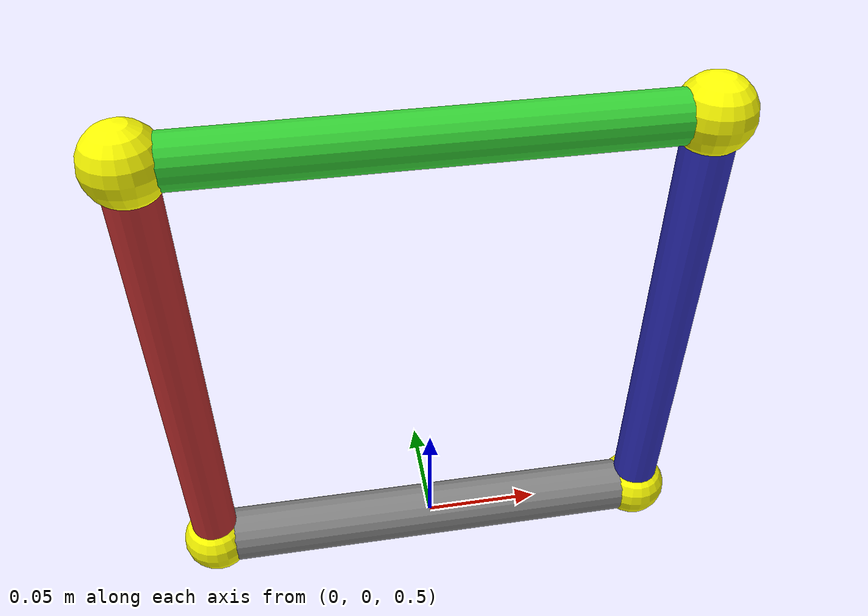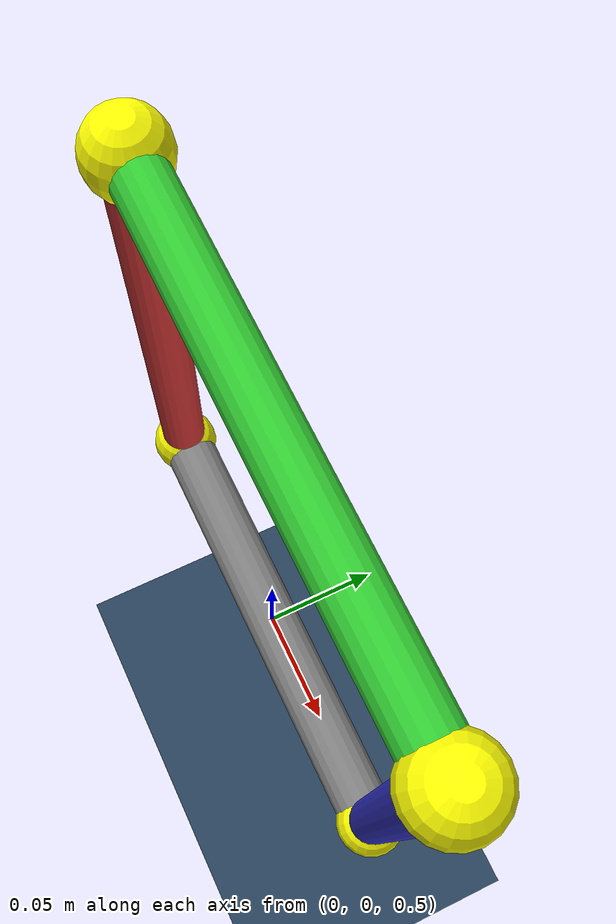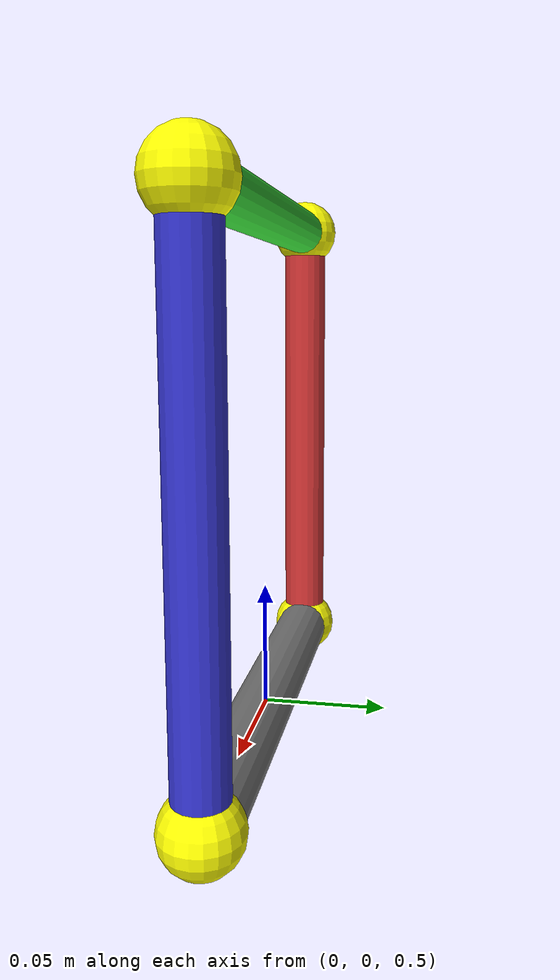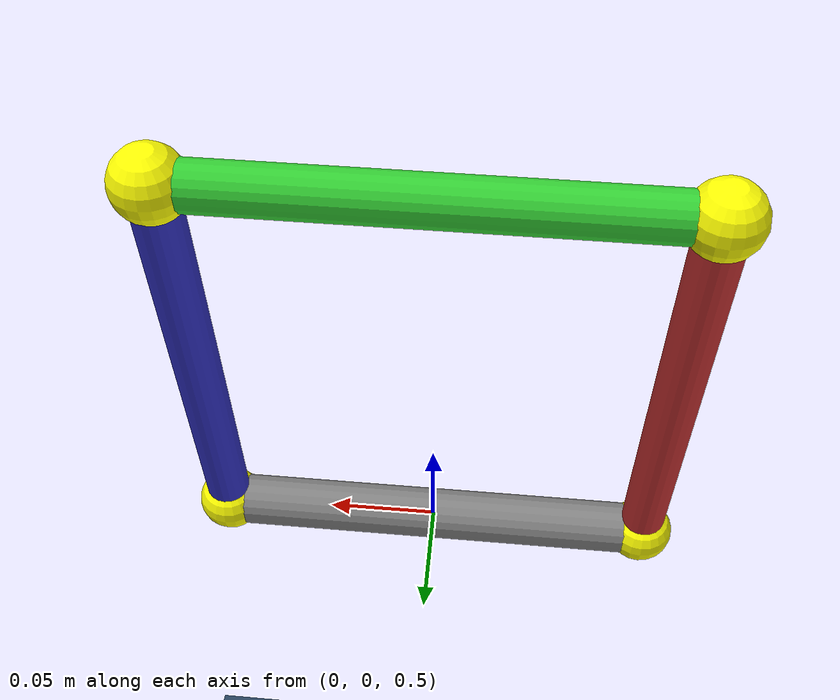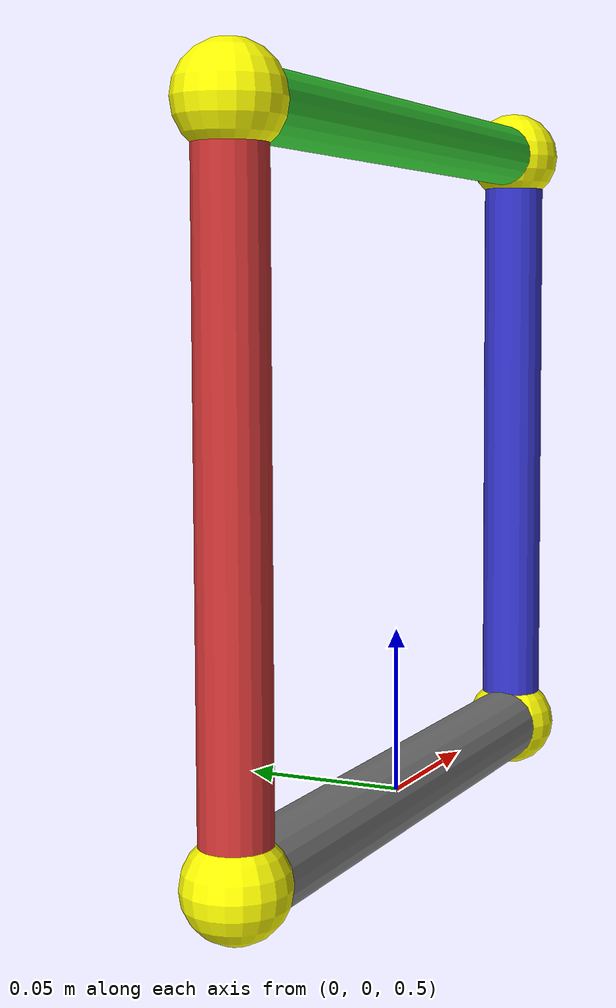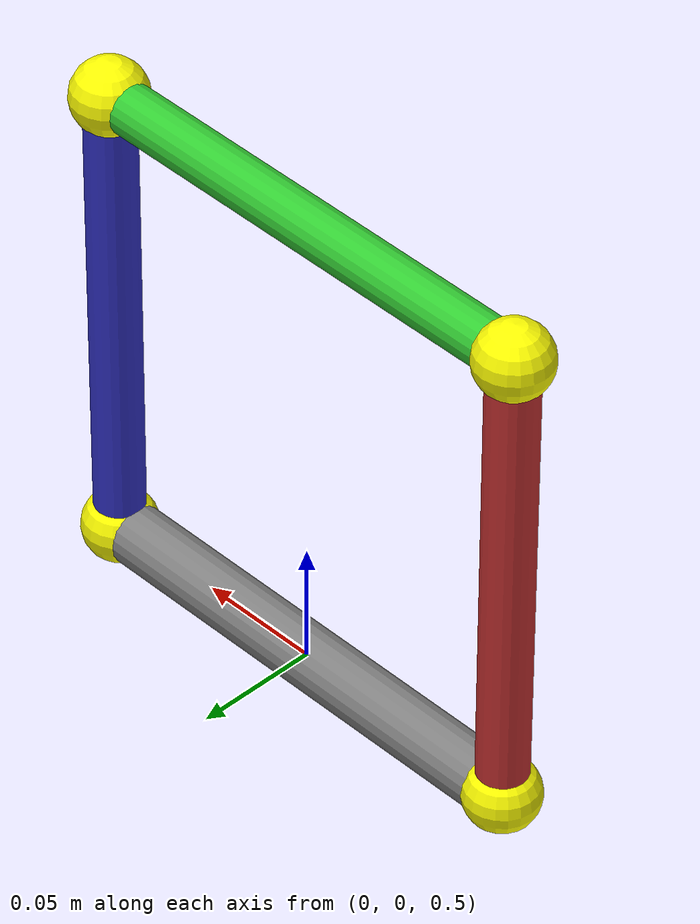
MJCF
<mujoco model="scene">
    <include file="simple.xml" />

    <visual>
        <headlight diffuse="0.6 0.6 0.6" ambient="0.3 0.3 0.3" specular="0 0 0" />
        <rgba haze="0.15 0.25 0.35 1" />
        <global azimuth="160" elevation="-20" />
    </visual>

    <asset>
        <texture type="skybox" builtin="gradient" rgb1="0.3 0.5 0.7" rgb2="0 0 0" width="512"
            height="3072" />
        <texture type="2d" name="groundplane" builtin="checker" mark="edge" rgb1="0.2 0.3 0.4"
            rgb2="0.1 0.2 0.3"
            markrgb="0.8 0.8 0.8" width="300" height="300" />
        <material name="groundplane" texture="groundplane" texuniform="true" texrepeat="5 5"
            reflectance="0.2" />
    </asset>

    <worldbody>
        <light pos="0 0 3.5" dir="0 0 -1" directional="true" />
        <geom name="floor" size="0 0 0.05" pos="0 0 0" type="plane" material="groundplane" />
    </worldbody>
</mujoco>

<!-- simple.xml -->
<mujoco model="four_bar_square">
    <compiler angle="radian"/>

    <default>
        <joint type="hinge" axis="0 1 0" damping="0.05"/>
        <geom type="capsule" size="0.01" density="1000"/>
        <!-- Default color is yellow -->
        <site size="0.015" rgba="1 1 0 1"/>
    </default>

    <worldbody>
        <!-- Ground link (bottom of the square, fixed to world) -->
        <!-- Color is gray -->
        <geom name="ground_link" type="capsule" size="0.012"
              fromto="-0.1 0 0.5  0.1 0 0.5" rgba="0.5 0.5 0.5 1"/>
        <site name="ground_left" pos="-0.1 0 0.5"/>
        <site name="ground_right" pos="0.1 0 0.5"/>

        <!-- Link 1: Left crank (left side of the square) -->
        <body name="left_crank" pos="-0.1 0 0.5">

            <!-- Color is red -->
            <joint name="j_left"/>
            <geom name="left_link" fromto="0 0 0  0 0 0.2" rgba="0.8 0.2 0.2 1"/>
            <site name="left_top" pos="0 0 0.2"/>

            <!-- Link 2: Coupler (top of the square) -->
            <!-- Color is green -->
            <body name="coupler" pos="0 0 0.2">
                <joint name="j_coupler"/>
                <geom name="top_link" fromto="0 0 0  0.2 0 0" rgba="0.2 0.8 0.2 1"/>
                <site name="coupler_end" pos="0.2 0 0"/>
            </body>
        </body>

        <!-- Link 3: Right crank (right side of the square) -->
        <body name="right_crank" pos="0.1 0 0.5">
            <!-- Color is blue -->
            <joint name="j_right"/>
            <geom name="right_link" fromto="0 0 0  0 0 0.2" rgba="0.2 0.2 0.8 1"/>
            <site name="right_top" pos="0 0 0.2"/>
        </body>
    </worldbody>

    <!-- Spatial tendon connecting the free ends to close the loop -->
    <!-- color is orange -->
    <!-- This will have length 0 by default -->
    <tendon>
        <spatial name="close_loop" width="0.003" rgba="1 0.5 0 0.8">
            <site site="coupler_end"/>
            <site site="right_top"/>
        </spatial>
    </tendon>

    <!-- Equality constraint: force tendon length to zero, closing the kinematic chain -->
    <equality>
        <!-- By default, the tendon will be closed when the mechanism is initialized -->
        <tendon tendon1="close_loop"/>
    </equality>

    <!-- Single actuator to drive the mechanism -->
    <actuator>
        <motor name="drive" joint="j_left" gear="1" ctrlrange="-1 1" ctrllimited="true"/>
    </actuator>
</mujoco>
